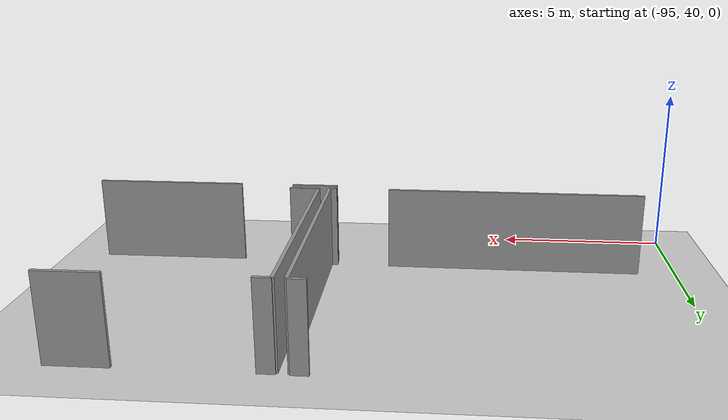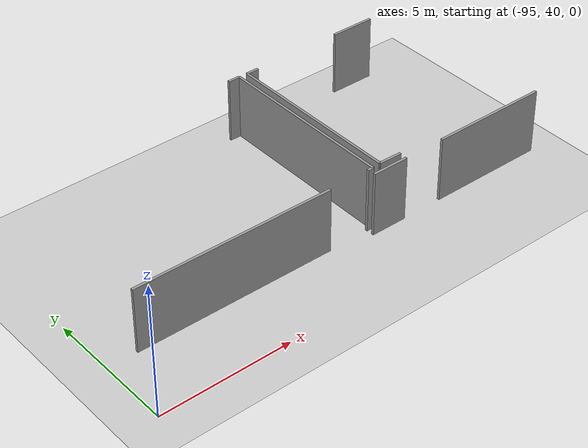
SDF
<sdf version="1.6">
 <world name="default">
  <model name="ground_plane">
   <static>1</static>
   <link name="link">
    <collision name="collision">
     <geometry><plane><normal>0 0 1</normal><size>100 100</size></plane></geometry>
     <surface><friction><ode><mu>100</mu><mu2>50</mu2></ode></friction></surface>
    </collision>
    <visual name="visual">
     <cast_shadows>0</cast_shadows>
     <geometry><plane><normal>0 0 1</normal><size>100 100</size></plane></geometry>
     <material>
      <script><uri>file://media/materials/scripts/gazebo.material</uri><name>Gazebo/Grey</name></script>
     </material>
    </visual>
   </link>
  </model>
  <model name="0510035740_A_40_1_103">
   <static>1</static>
   <link name="Wall_3">
    <collision name="Wall_3_Collision">
     <geometry><box><size>0.472833638954 0.1 2.5</size></box></geometry>
     <pose>0.236416819477 0 1.25 0 0 0</pose>
    </collision>
    <visual name="Wall_3_Visual">
     <pose>0.236416819477 0 1.25 0 0 0</pose>
     <geometry><box><size>0.472833638954 0.1 2.5</size></box></geometry>
     <material>
      <script><uri>file://media/materials/scripts/gazebo.material</uri><name>Gazebo/Grey</name></script>
      <ambient>1 1 1 1</ambient>
     </material>
    </visual>
    <pose>9.10160339587 -0.0 0 0 0 0.0</pose>
   </link>
   <link name="Wall_4">
    <collision name="Wall_4_Collision">
     <geometry><box><size>7.03311485187 0.1 2.5</size></box></geometry>
     <pose>3.51655742594 0 1.25 0 0 0</pose>
    </collision>
    <visual name="Wall_4_Visual">
     <pose>3.51655742594 0 1.25 0 0 0</pose>
     <geometry><box><size>7.03311485187 0.1 2.5</size></box></geometry>
     <material>
      <script><uri>file://media/materials/scripts/gazebo.material</uri><name>Gazebo/Grey</name></script>
      <ambient>1 1 1 1</ambient>
     </material>
    </visual>
    <pose>9.57443703483 -0.0 0 0 0 -1.57079632679</pose>
   </link>
   <link name="Wall_5">
    <collision name="Wall_5_Collision">
     <geometry><box><size>0.221315584094 0.1 2.5</size></box></geometry>
     <pose>0.110657792047 0 1.25 0 0 0</pose>
    </collision>
    <visual name="Wall_5_Visual">
     <pose>0.110657792047 0 1.25 0 0 0</pose>
     <geometry><box><size>0.221315584094 0.1 2.5</size></box></geometry>
     <material>
      <script><uri>file://media/materials/scripts/gazebo.material</uri><name>Gazebo/Grey</name></script>
      <ambient>1 1 1 1</ambient>
     </material>
    </visual>
    <pose>9.57443703483 -7.03311485187 0 0 0 3.14159265359</pose>
   </link>
   <link name="Wall_6">
    <collision name="Wall_6_Collision">
     <geometry><box><size>7.67512598577 0.1 2.5</size></box></geometry>
     <pose>3.83756299289 0 1.25 0 0 0</pose>
    </collision>
    <visual name="Wall_6_Visual">
     <pose>3.83756299289 0 1.25 0 0 0</pose>
     <geometry><box><size>7.67512598577 0.1 2.5</size></box></geometry>
     <material>
      <script><uri>file://media/materials/scripts/gazebo.material</uri><name>Gazebo/Grey</name></script>
      <ambient>1 1 1 1</ambient>
     </material>
    </visual>
    <pose>7.74959867515 -7.03311485187 0 0 0 3.1354419375</pose>
   </link>
   <link name="Wall_7">
    <collision name="Wall_7_Collision">
     <geometry><box><size>6.96890287621 0.1 2.5</size></box></geometry>
     <pose>3.48445143811 0 1.25 0 0 0</pose>
    </collision>
    <visual name="Wall_7_Visual">
     <pose>3.48445143811 0 1.25 0 0 0</pose>
     <geometry><box><size>6.96890287621 0.1 2.5</size></box></geometry>
     <material>
      <script><uri>file://media/materials/scripts/gazebo.material</uri><name>Gazebo/Grey</name></script>
      <ambient>1 1 1 1</ambient>
     </material>
    </visual>
    <pose>9.91605489743 -6.98540002411 0 0 0 1.57079632679</pose>
   </link>
   <link name="Wall_8">
    <collision name="Wall_8_Collision">
     <geometry><box><size>0.479940102663 0.1 2.5</size></box></geometry>
     <pose>0.239970051332 0 1.25 0 0 0</pose>
    </collision>
    <visual name="Wall_8_Visual">
     <pose>0.239970051332 0 1.25 0 0 0</pose>
     <geometry><box><size>0.479940102663 0.1 2.5</size></box></geometry>
     <material>
      <script><uri>file://media/materials/scripts/gazebo.material</uri><name>Gazebo/Grey</name></script>
      <ambient>1 1 1 1</ambient>
     </material>
    </visual>
    <pose>9.91605489743 -0.0164971478969 0 0 0 0.0</pose>
   </link>
   <link name="Wall_9">
    <collision name="Wall_9_Collision">
     <geometry><box><size>1.72509406547 0.1 2.5</size></box></geometry>
     <pose>0.862547032734 0 1.25 0 0 0</pose>
    </collision>
    <visual name="Wall_9_Visual">
     <pose>0.862547032734 0 1.25 0 0 0</pose>
     <geometry><box><size>1.72509406547 0.1 2.5</size></box></geometry>
     <material>
      <script><uri>file://media/materials/scripts/gazebo.material</uri><name>Gazebo/Grey</name></script>
      <ambient>1 1 1 1</ambient>
     </material>
    </visual>
    <pose>13.9773989074 -0.0164971478969 0 0 0 0.0</pose>
   </link>
   <link name="Wall_12">
    <collision name="Wall_12_Collision">
     <geometry><box><size>0.886640876324 0.1 2.5</size></box></geometry>
     <pose>0.443320438162 0 1.25 0 0 0</pose>
    </collision>
    <visual name="Wall_12_Visual">
     <pose>0.443320438162 0 1.25 0 0 0</pose>
     <geometry><box><size>0.886640876324 0.1 2.5</size></box></geometry>
     <material>
      <script><uri>file://media/materials/scripts/gazebo.material</uri><name>Gazebo/Grey</name></script>
      <ambient>1 1 1 1</ambient>
     </material>
    </visual>
    <pose>10.8023324429 -7.01078025164 0 0 0 3.11296359353</pose>
   </link>
   <link name="Wall_70">
    <collision name="Wall_70_Collision">
     <geometry><box><size>1.40454179172 0.1 2.5</size></box></geometry>
     <pose>0.702270895859 0 1.25 0 0 0</pose>
    </collision>
    <visual name="Wall_70_Visual">
     <pose>0.702270895859 0 1.25 0 0 0</pose>
     <geometry><box><size>1.40454179172 0.1 2.5</size></box></geometry>
     <material>
      <script><uri>file://media/materials/scripts/gazebo.material</uri><name>Gazebo/Grey</name></script>
      <ambient>1 1 1 1</ambient>
     </material>
    </visual>
    <pose>9.37342563276 -7.31991142301 0 0 0 0.0</pose>
   </link>
   <link name="Wall_71">
    <collision name="Wall_71_Collision">
     <geometry><box><size>4.51311206005 0.1 2.5</size></box></geometry>
     <pose>2.25655603002 0 1.25 0 0 0</pose>
    </collision>
    <visual name="Wall_71_Visual">
     <pose>2.25655603002 0 1.25 0 0 0</pose>
     <geometry><box><size>4.51311206005 0.1 2.5</size></box></geometry>
     <material>
      <script><uri>file://media/materials/scripts/gazebo.material</uri><name>Gazebo/Grey</name></script>
      <ambient>1 1 1 1</ambient>
     </material>
    </visual>
    <pose>12.3776831659 -7.31991142301 0 0 0 0.0</pose>
   </link>
   <pose>-93.95 49.6557238758 0 0 0 0</pose>
  </model>
 </world>
</sdf>
